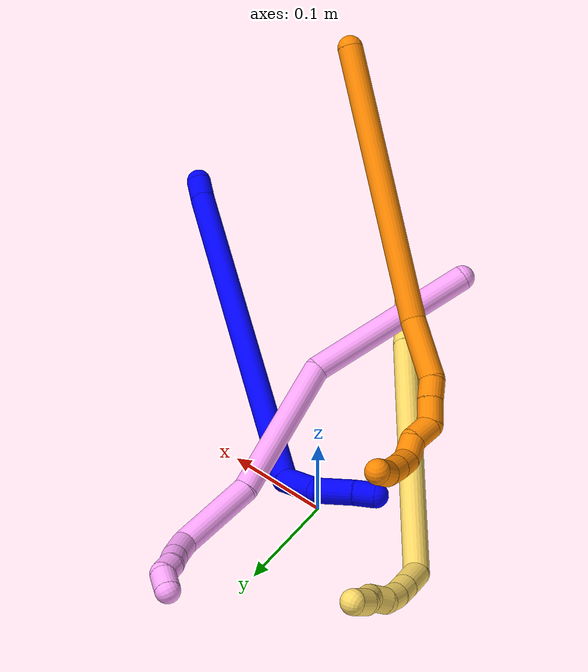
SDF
<sdf version="1.7">
 <world name="default">
  <model name="1">
   <static>0</static>
   <link name="1">
    <collision name="collision-cylinder-e_1_1_4">
     <pose>-0.001425 -0.001514 -0.011313 3.00856 -0.124166 -1.50168</pose>
     <geometry><cylinder><radius>0.0125</radius><length>0.023006</length></cylinder></geometry>
     <surface>
      <friction><ode><mu>1.16</mu><mu2>1.16</mu2><slip1>0</slip1><slip2>0</slip2></ode></friction>
      <contact><ode><kp>1e+06</kp><kd>1</kd><max_vel>0</max_vel><min_depth>0.001</min_depth></ode></contact>
     </surface>
    </collision>
    <visual name="visual-cylinder-e_1_1_4">
     <pose>-0.001425 -0.001514 -0.011313 3.00856 -0.124166 -1.50168</pose>
     <geometry><cylinder><radius>0.0125</radius><length>0.023006</length></cylinder></geometry>
     <material><ambient>0 0 1 1</ambient></material>
    </visual>
    <collision name="collision-cylinder-e_2_4_5">
     <pose>-0.009298 -0.001865 -0.210254 -3.13539 -0.034357 2.78465</pose>
     <geometry><cylinder><radius>0.0125</radius><length>0.375483</length></cylinder></geometry>
     <surface>
      <friction><ode><mu>1.16</mu><mu2>1.16</mu2><slip1>0</slip1><slip2>0</slip2></ode></friction>
      <contact><ode><kp>1e+06</kp><kd>1</kd><max_vel>0</max_vel><min_depth>0.001</min_depth></ode></contact>
     </surface>
    </collision>
    <visual name="visual-cylinder-e_2_4_5">
     <pose>-0.009298 -0.001865 -0.210254 -3.13539 -0.034357 2.78465</pose>
     <geometry><cylinder><radius>0.0125</radius><length>0.375483</length></cylinder></geometry>
     <material><ambient>0 0 1 1</ambient></material>
    </visual>
    <collision name="collision-cylinder-e_3_5_6">
     <pose>-0.018763 0.013321 -0.413426 -2.40759 -0.143066 0.368571</pose>
     <geometry><cylinder><radius>0.0125</radius><length>0.042302</length></cylinder></geometry>
     <surface>
      <friction><ode><mu>1.16</mu><mu2>1.16</mu2><slip1>0</slip1><slip2>0</slip2></ode></friction>
      <contact><ode><kp>1e+06</kp><kd>1</kd><max_vel>0</max_vel><min_depth>0.001</min_depth></ode></contact>
     </surface>
    </collision>
    <visual name="visual-cylinder-e_3_5_6">
     <pose>-0.018763 0.013321 -0.413426 -2.40759 -0.143066 0.368571</pose>
     <geometry><cylinder><radius>0.0125</radius><length>0.042302</length></cylinder></geometry>
     <material><ambient>0 0 1 1</ambient></material>
    </visual>
    <collision name="collision-cylinder-e_4_6_7">
     <pose>-0.032539 0.04123 -0.435996 -2.03921 -0.604984 0.939484</pose>
     <geometry><cylinder><radius>0.0125</radius><length>0.03784</length></cylinder></geometry>
     <surface>
      <friction><ode><mu>1.16</mu><mu2>1.16</mu2><slip1>0</slip1><slip2>0</slip2></ode></friction>
      <contact><ode><kp>1e+06</kp><kd>1</kd><max_vel>0</max_vel><min_depth>0.001</min_depth></ode></contact>
     </surface>
    </collision>
    <visual name="visual-cylinder-e_4_6_7">
     <pose>-0.032539 0.04123 -0.435996 -2.03921 -0.604984 0.939484</pose>
     <geometry><cylinder><radius>0.0125</radius><length>0.03784</length></cylinder></geometry>
     <material><ambient>0 0 1 1</ambient></material>
    </visual>
    <collision name="collision-cylinder-e_5_7_2">
     <pose>-0.049982 0.062341 -0.447182 -2.09327 -0.675628 1.09204</pose>
     <geometry><cylinder><radius>0.0125</radius><length>0.021369</length></cylinder></geometry>
     <surface>
      <friction><ode><mu>1.16</mu><mu2>1.16</mu2><slip1>0</slip1><slip2>0</slip2></ode></friction>
      <contact><ode><kp>1e+06</kp><kd>1</kd><max_vel>0</max_vel><min_depth>0.001</min_depth></ode></contact>
     </surface>
    </collision>
    <visual name="visual-cylinder-e_5_7_2">
     <pose>-0.049982 0.062341 -0.447182 -2.09327 -0.675628 1.09204</pose>
     <geometry><cylinder><radius>0.0125</radius><length>0.021369</length></cylinder></geometry>
     <material><ambient>0 0 1 1</ambient></material>
    </visual>
    <collision name="collision-sphere-2">
     <pose>-0.056664 0.069566 -0.451342 0 -0 0</pose>
     <geometry><sphere><radius>0.0125</radius></sphere></geometry>
     <surface>
      <friction><ode><mu>1.16</mu><mu2>1.16</mu2><slip1>0</slip1><slip2>0</slip2></ode></friction>
      <contact><ode><kp>1e+06</kp><kd>1</kd><max_vel>0</max_vel><min_depth>0.001</min_depth></ode></contact>
     </surface>
    </collision>
    <visual name="visual-sphere-2">
     <pose>-0.056664 0.069566 -0.451342 0 -0 0</pose>
     <geometry><sphere><radius>0.0125</radius></sphere></geometry>
     <material><ambient>0 0 1 1</ambient></material>
    </visual>
    <collision name="collision-sphere-7">
     <pose>-0.0433 0.055116 -0.443022 0 -0 0</pose>
     <geometry><sphere><radius>0.0125</radius></sphere></geometry>
     <surface>
      <friction><ode><mu>1.16</mu><mu2>1.16</mu2><slip1>0</slip1><slip2>0</slip2></ode></friction>
      <contact><ode><kp>1e+06</kp><kd>1</kd><max_vel>0</max_vel><min_depth>0.001</min_depth></ode></contact>
     </surface>
    </collision>
    <visual name="visual-sphere-7">
     <pose>-0.0433 0.055116 -0.443022 0 -0 0</pose>
     <geometry><sphere><radius>0.0125</radius></sphere></geometry>
     <material><ambient>0 0 1 1</ambient></material>
    </visual>
    <collision name="collision-sphere-6">
     <pose>-0.021778 0.027344 -0.42897 0 -0 0</pose>
     <geometry><sphere><radius>0.0125</radius></sphere></geometry>
     <surface>
      <friction><ode><mu>1.16</mu><mu2>1.16</mu2><slip1>0</slip1><slip2>0</slip2></ode></friction>
      <contact><ode><kp>1e+06</kp><kd>1</kd><max_vel>0</max_vel><min_depth>0.001</min_depth></ode></contact>
     </surface>
    </collision>
    <visual name="visual-sphere-6">
     <pose>-0.021778 0.027344 -0.42897 0 -0 0</pose>
     <geometry><sphere><radius>0.0125</radius></sphere></geometry>
     <material><ambient>0 0 1 1</ambient></material>
    </visual>
    <collision name="collision-sphere-5">
     <pose>-0.015747 -0.000702 -0.397881 0 -0 0</pose>
     <geometry><sphere><radius>0.0125</radius></sphere></geometry>
     <surface>
      <friction><ode><mu>1.16</mu><mu2>1.16</mu2><slip1>0</slip1><slip2>0</slip2></ode></friction>
      <contact><ode><kp>1e+06</kp><kd>1</kd><max_vel>0</max_vel><min_depth>0.001</min_depth></ode></contact>
     </surface>
    </collision>
    <visual name="visual-sphere-5">
     <pose>-0.015747 -0.000702 -0.397881 0 -0 0</pose>
     <geometry><sphere><radius>0.0125</radius></sphere></geometry>
     <material><ambient>0 0 1 1</ambient></material>
    </visual>
    <collision name="collision-sphere-1">
     <geometry><sphere><radius>0.0125</radius></sphere></geometry>
     <surface>
      <friction><ode><mu>1.16</mu><mu2>1.16</mu2><slip1>0</slip1><slip2>0</slip2></ode></friction>
      <contact><ode><kp>1e+06</kp><kd>1</kd><max_vel>0</max_vel><min_depth>0.001</min_depth></ode></contact>
     </surface>
    </collision>
    <visual name="visual-sphere-1">
     <geometry><sphere><radius>0.0125</radius></sphere></geometry>
     <material><ambient>0 0 1 1</ambient></material>
    </visual>
    <collision name="collision-sphere-4">
     <pose>-0.002849 -0.003028 -0.022627 0 -0 0</pose>
     <geometry><sphere><radius>0.0125</radius></sphere></geometry>
     <surface>
      <friction><ode><mu>1.16</mu><mu2>1.16</mu2><slip1>0</slip1><slip2>0</slip2></ode></friction>
      <contact><ode><kp>1e+06</kp><kd>1</kd><max_vel>0</max_vel><min_depth>0.001</min_depth></ode></contact>
     </surface>
    </collision>
    <visual name="visual-sphere-4">
     <pose>-0.002849 -0.003028 -0.022627 0 -0 0</pose>
     <geometry><sphere><radius>0.0125</radius></sphere></geometry>
     <material><ambient>0 0 1 1</ambient></material>
    </visual>
    <inertial>
     <pose>-0.013234 0.005441 -0.2455 0 -0 0</pose>
     <mass>0.5</mass>
     <inertia>
      <ixx>-0.002587</ixx>
      <ixy>0</ixy>
      <ixz>0</ixz>
      <iyy>0.005701</iyy>
      <iyz>0</iyz>
      <izz>8.5e-05</izz>
     </inertia>
    </inertial>
   </link>
   <pose>0.351319 -0.251631 0.015222 1.5972 -0.76327 0.845753</pose>
  </model>
  <model name="4">
   <static>0</static>
   <link name="4">
    <collision name="collision-cylinder-e_1_1_4">
     <pose>0.002328 0.014761 -0.086279 -2.97214 0.026591 -0.310592</pose>
     <geometry><cylinder><radius>0.0125</radius><length>0.175126</length></cylinder></geometry>
     <surface>
      <friction><ode><mu>1.16</mu><mu2>1.16</mu2><slip1>0</slip1><slip2>0</slip2></ode></friction>
      <contact><ode><kp>1e+06</kp><kd>1</kd><max_vel>0</max_vel><min_depth>0.001</min_depth></ode></contact>
     </surface>
    </collision>
    <visual name="visual-cylinder-e_1_1_4">
     <pose>0.002328 0.014761 -0.086279 -2.97214 0.026591 -0.310592</pose>
     <geometry><cylinder><radius>0.0125</radius><length>0.175126</length></cylinder></geometry>
     <material><ambient>1 0.65098 0.996078 1</ambient></material>
    </visual>
    <collision name="collision-cylinder-e_2_4_5">
     <pose>-0.001881 0.074327 -0.230804 -2.48591 -0.088719 0.259553</pose>
     <geometry><cylinder><radius>0.0125</radius><length>0.147551</length></cylinder></geometry>
     <surface>
      <friction><ode><mu>1.16</mu><mu2>1.16</mu2><slip1>0</slip1><slip2>0</slip2></ode></friction>
      <contact><ode><kp>1e+06</kp><kd>1</kd><max_vel>0</max_vel><min_depth>0.001</min_depth></ode></contact>
     </surface>
    </collision>
    <visual name="visual-cylinder-e_2_4_5">
     <pose>-0.001881 0.074327 -0.230804 -2.48591 -0.088719 0.259553</pose>
     <geometry><cylinder><radius>0.0125</radius><length>0.147551</length></cylinder></geometry>
     <material><ambient>1 0.65098 0.996078 1</ambient></material>
    </visual>
    <collision name="collision-cylinder-e_3_5_6">
     <pose>-0.00575 0.135383 -0.327074 -2.7377 0.064416 -0.312173</pose>
     <geometry><cylinder><radius>0.0125</radius><length>0.082873</length></cylinder></geometry>
     <surface>
      <friction><ode><mu>1.16</mu><mu2>1.16</mu2><slip1>0</slip1><slip2>0</slip2></ode></friction>
      <contact><ode><kp>1e+06</kp><kd>1</kd><max_vel>0</max_vel><min_depth>0.001</min_depth></ode></contact>
     </surface>
    </collision>
    <visual name="visual-cylinder-e_3_5_6">
     <pose>-0.00575 0.135383 -0.327074 -2.7377 0.064416 -0.312173</pose>
     <geometry><cylinder><radius>0.0125</radius><length>0.082873</length></cylinder></geometry>
     <material><ambient>1 0.65098 0.996078 1</ambient></material>
    </visual>
    <collision name="collision-cylinder-e_4_6_7">
     <pose>0.004795 0.163779 -0.372148 -2.09673 0.511205 -0.852085</pose>
     <geometry><cylinder><radius>0.0125</radius><length>0.032203</length></cylinder></geometry>
     <surface>
      <friction><ode><mu>1.16</mu><mu2>1.16</mu2><slip1>0</slip1><slip2>0</slip2></ode></friction>
      <contact><ode><kp>1e+06</kp><kd>1</kd><max_vel>0</max_vel><min_depth>0.001</min_depth></ode></contact>
     </surface>
    </collision>
    <visual name="visual-cylinder-e_4_6_7">
     <pose>0.004795 0.163779 -0.372148 -2.09673 0.511205 -0.852085</pose>
     <geometry><cylinder><radius>0.0125</radius><length>0.032203</length></cylinder></geometry>
     <material><ambient>1 0.65098 0.996078 1</ambient></material>
    </visual>
    <collision name="collision-cylinder-e_5_7_8">
     <pose>0.017986 0.184514 -0.382475 -1.93534 0.524068 -0.742689</pose>
     <geometry><cylinder><radius>0.0125</radius><length>0.021239</length></cylinder></geometry>
     <surface>
      <friction><ode><mu>1.16</mu><mu2>1.16</mu2><slip1>0</slip1><slip2>0</slip2></ode></friction>
      <contact><ode><kp>1e+06</kp><kd>1</kd><max_vel>0</max_vel><min_depth>0.001</min_depth></ode></contact>
     </surface>
    </collision>
    <visual name="visual-cylinder-e_5_7_8">
     <pose>0.017986 0.184514 -0.382475 -1.93534 0.524068 -0.742689</pose>
     <geometry><cylinder><radius>0.0125</radius><length>0.021239</length></cylinder></geometry>
     <material><ambient>1 0.65098 0.996078 1</ambient></material>
    </visual>
    <collision name="collision-cylinder-e_6_8_9">
     <pose>0.028041 0.200166 -0.391124 -2.22096 0.49073 -0.935307</pose>
     <geometry><cylinder><radius>0.0125</radius><length>0.020119</length></cylinder></geometry>
     <surface>
      <friction><ode><mu>1.16</mu><mu2>1.16</mu2><slip1>0</slip1><slip2>0</slip2></ode></friction>
      <contact><ode><kp>1e+06</kp><kd>1</kd><max_vel>0</max_vel><min_depth>0.001</min_depth></ode></contact>
     </surface>
    </collision>
    <visual name="visual-cylinder-e_6_8_9">
     <pose>0.028041 0.200166 -0.391124 -2.22096 0.49073 -0.935307</pose>
     <geometry><cylinder><radius>0.0125</radius><length>0.020119</length></cylinder></geometry>
     <material><ambient>1 0.65098 0.996078 1</ambient></material>
    </visual>
    <collision name="collision-cylinder-e_7_9_2">
     <pose>0.032471 0.217575 -0.397882 -1.7041 -0.029709 0.033958</pose>
     <geometry><cylinder><radius>0.0125</radius><length>0.020888</length></cylinder></geometry>
     <surface>
      <friction><ode><mu>1.16</mu><mu2>1.16</mu2><slip1>0</slip1><slip2>0</slip2></ode></friction>
      <contact><ode><kp>1e+06</kp><kd>1</kd><max_vel>0</max_vel><min_depth>0.001</min_depth></ode></contact>
     </surface>
    </collision>
    <visual name="visual-cylinder-e_7_9_2">
     <pose>0.032471 0.217575 -0.397882 -1.7041 -0.029709 0.033958</pose>
     <geometry><cylinder><radius>0.0125</radius><length>0.020888</length></cylinder></geometry>
     <material><ambient>1 0.65098 0.996078 1</ambient></material>
    </visual>
    <collision name="collision-sphere-2">
     <pose>0.032161 0.227922 -0.39927 0 -0 0</pose>
     <geometry><sphere><radius>0.0125</radius></sphere></geometry>
     <surface>
      <friction><ode><mu>1.16</mu><mu2>1.16</mu2><slip1>0</slip1><slip2>0</slip2></ode></friction>
      <contact><ode><kp>1e+06</kp><kd>1</kd><max_vel>0</max_vel><min_depth>0.001</min_depth></ode></contact>
     </surface>
    </collision>
    <visual name="visual-sphere-2">
     <pose>0.032161 0.227922 -0.39927 0 -0 0</pose>
     <geometry><sphere><radius>0.0125</radius></sphere></geometry>
     <material><ambient>1 0.65098 0.996078 1</ambient></material>
    </visual>
    <collision name="collision-sphere-9">
     <pose>0.032782 0.207229 -0.396495 0 -0 0</pose>
     <geometry><sphere><radius>0.0125</radius></sphere></geometry>
     <surface>
      <friction><ode><mu>1.16</mu><mu2>1.16</mu2><slip1>0</slip1><slip2>0</slip2></ode></friction>
      <contact><ode><kp>1e+06</kp><kd>1</kd><max_vel>0</max_vel><min_depth>0.001</min_depth></ode></contact>
     </surface>
    </collision>
    <visual name="visual-sphere-9">
     <pose>0.032782 0.207229 -0.396495 0 -0 0</pose>
     <geometry><sphere><radius>0.0125</radius></sphere></geometry>
     <material><ambient>1 0.65098 0.996078 1</ambient></material>
    </visual>
    <collision name="collision-sphere-4">
     <pose>0.004656 0.029523 -0.172557 0 -0 0</pose>
     <geometry><sphere><radius>0.0125</radius></sphere></geometry>
     <surface>
      <friction><ode><mu>1.16</mu><mu2>1.16</mu2><slip1>0</slip1><slip2>0</slip2></ode></friction>
      <contact><ode><kp>1e+06</kp><kd>1</kd><max_vel>0</max_vel><min_depth>0.001</min_depth></ode></contact>
     </surface>
    </collision>
    <visual name="visual-sphere-4">
     <pose>0.004656 0.029523 -0.172557 0 -0 0</pose>
     <geometry><sphere><radius>0.0125</radius></sphere></geometry>
     <material><ambient>1 0.65098 0.996078 1</ambient></material>
    </visual>
    <collision name="collision-sphere-1">
     <geometry><sphere><radius>0.0125</radius></sphere></geometry>
     <surface>
      <friction><ode><mu>1.16</mu><mu2>1.16</mu2><slip1>0</slip1><slip2>0</slip2></ode></friction>
      <contact><ode><kp>1e+06</kp><kd>1</kd><max_vel>0</max_vel><min_depth>0.001</min_depth></ode></contact>
     </surface>
    </collision>
    <visual name="visual-sphere-1">
     <geometry><sphere><radius>0.0125</radius></sphere></geometry>
     <material><ambient>1 0.65098 0.996078 1</ambient></material>
    </visual>
    <collision name="collision-sphere-8">
     <pose>0.0233 0.193104 -0.385753 0 -0 0</pose>
     <geometry><sphere><radius>0.0125</radius></sphere></geometry>
     <surface>
      <friction><ode><mu>1.16</mu><mu2>1.16</mu2><slip1>0</slip1><slip2>0</slip2></ode></friction>
      <contact><ode><kp>1e+06</kp><kd>1</kd><max_vel>0</max_vel><min_depth>0.001</min_depth></ode></contact>
     </surface>
    </collision>
    <visual name="visual-sphere-8">
     <pose>0.0233 0.193104 -0.385753 0 -0 0</pose>
     <geometry><sphere><radius>0.0125</radius></sphere></geometry>
     <material><ambient>1 0.65098 0.996078 1</ambient></material>
    </visual>
    <collision name="collision-sphere-5">
     <pose>-0.008417 0.119132 -0.289051 0 -0 0</pose>
     <geometry><sphere><radius>0.0125</radius></sphere></geometry>
     <surface>
      <friction><ode><mu>1.16</mu><mu2>1.16</mu2><slip1>0</slip1><slip2>0</slip2></ode></friction>
      <contact><ode><kp>1e+06</kp><kd>1</kd><max_vel>0</max_vel><min_depth>0.001</min_depth></ode></contact>
     </surface>
    </collision>
    <visual name="visual-sphere-5">
     <pose>-0.008417 0.119132 -0.289051 0 -0 0</pose>
     <geometry><sphere><radius>0.0125</radius></sphere></geometry>
     <material><ambient>1 0.65098 0.996078 1</ambient></material>
    </visual>
    <collision name="collision-sphere-6">
     <pose>-0.003083 0.151633 -0.365098 0 -0 0</pose>
     <geometry><sphere><radius>0.0125</radius></sphere></geometry>
     <surface>
      <friction><ode><mu>1.16</mu><mu2>1.16</mu2><slip1>0</slip1><slip2>0</slip2></ode></friction>
      <contact><ode><kp>1e+06</kp><kd>1</kd><max_vel>0</max_vel><min_depth>0.001</min_depth></ode></contact>
     </surface>
    </collision>
    <visual name="visual-sphere-6">
     <pose>-0.003083 0.151633 -0.365098 0 -0 0</pose>
     <geometry><sphere><radius>0.0125</radius></sphere></geometry>
     <material><ambient>1 0.65098 0.996078 1</ambient></material>
    </visual>
    <collision name="collision-sphere-7">
     <pose>0.012672 0.175924 -0.379197 0 -0 0</pose>
     <geometry><sphere><radius>0.0125</radius></sphere></geometry>
     <surface>
      <friction><ode><mu>1.16</mu><mu2>1.16</mu2><slip1>0</slip1><slip2>0</slip2></ode></friction>
      <contact><ode><kp>1e+06</kp><kd>1</kd><max_vel>0</max_vel><min_depth>0.001</min_depth></ode></contact>
     </surface>
    </collision>
    <visual name="visual-sphere-7">
     <pose>0.012672 0.175924 -0.379197 0 -0 0</pose>
     <geometry><sphere><radius>0.0125</radius></sphere></geometry>
     <material><ambient>1 0.65098 0.996078 1</ambient></material>
    </visual>
    <inertial>
     <pose>0.002865 0.085073 -0.225117 0 -0 0</pose>
     <mass>0.5</mass>
     <inertia>
      <ixx>0.000663</ixx>
      <ixy>0</ixy>
      <ixz>0</ixz>
      <iyy>-0.000747</iyy>
      <iyz>0</iyz>
      <izz>-0.000295</izz>
     </inertia>
    </inertial>
   </link>
   <pose>0.025362 -0.267893 0.078004 0.619891 -1.29958 0.430636</pose>
  </model>
  <model name="5">
   <static>0</static>
   <link name="5">
    <collision name="collision-cylinder-e_1_1_4">
     <pose>-0.015588 0.021847 0.01836 -0.871904 -0.499957 0.236766</pose>
     <geometry><cylinder><radius>0.0125</radius><length>0.065035</length></cylinder></geometry>
     <surface>
      <friction><ode><mu>1.16</mu><mu2>1.16</mu2><slip1>0</slip1><slip2>0</slip2></ode></friction>
      <contact><ode><kp>1e+06</kp><kd>1</kd><max_vel>0</max_vel><min_depth>0.001</min_depth></ode></contact>
     </surface>
    </collision>
    <visual name="visual-cylinder-e_1_1_4">
     <pose>-0.015588 0.021847 0.01836 -0.871904 -0.499957 0.236766</pose>
     <geometry><cylinder><radius>0.0125</radius><length>0.065035</length></cylinder></geometry>
     <material><ambient>1 0.858824 0.4 1</ambient></material>
    </visual>
    <collision name="collision-cylinder-e_2_4_5">
     <pose>-0.091307 0.144957 0.130891 -0.821673 -0.410167 0.180734</pose>
     <geometry><cylinder><radius>0.0125</radius><length>0.301582</length></cylinder></geometry>
     <surface>
      <friction><ode><mu>1.16</mu><mu2>1.16</mu2><slip1>0</slip1><slip2>0</slip2></ode></friction>
      <contact><ode><kp>1e+06</kp><kd>1</kd><max_vel>0</max_vel><min_depth>0.001</min_depth></ode></contact>
     </surface>
    </collision>
    <visual name="visual-cylinder-e_2_4_5">
     <pose>-0.091307 0.144957 0.130891 -0.821673 -0.410167 0.180734</pose>
     <geometry><cylinder><radius>0.0125</radius><length>0.301582</length></cylinder></geometry>
     <material><ambient>1 0.858824 0.4 1</ambient></material>
    </visual>
    <collision name="collision-cylinder-e_3_5_6">
     <pose>-0.152225 0.261383 0.229575 -1.28146 -0.049789 0.03713</pose>
     <geometry><cylinder><radius>0.0125</radius><length>0.03168</length></cylinder></geometry>
     <surface>
      <friction><ode><mu>1.16</mu><mu2>1.16</mu2><slip1>0</slip1><slip2>0</slip2></ode></friction>
      <contact><ode><kp>1e+06</kp><kd>1</kd><max_vel>0</max_vel><min_depth>0.001</min_depth></ode></contact>
     </surface>
    </collision>
    <visual name="visual-cylinder-e_3_5_6">
     <pose>-0.152225 0.261383 0.229575 -1.28146 -0.049789 0.03713</pose>
     <geometry><cylinder><radius>0.0125</radius><length>0.03168</length></cylinder></geometry>
     <material><ambient>1 0.858824 0.4 1</ambient></material>
    </visual>
    <collision name="collision-cylinder-e_4_6_7">
     <pose>-0.153354 0.286615 0.236827 -1.30532 -0.032668 0.024972</pose>
     <geometry><cylinder><radius>0.0125</radius><length>0.020881</length></cylinder></geometry>
     <surface>
      <friction><ode><mu>1.16</mu><mu2>1.16</mu2><slip1>0</slip1><slip2>0</slip2></ode></friction>
      <contact><ode><kp>1e+06</kp><kd>1</kd><max_vel>0</max_vel><min_depth>0.001</min_depth></ode></contact>
     </surface>
    </collision>
    <visual name="visual-cylinder-e_4_6_7">
     <pose>-0.153354 0.286615 0.236827 -1.30532 -0.032668 0.024972</pose>
     <geometry><cylinder><radius>0.0125</radius><length>0.020881</length></cylinder></geometry>
     <material><ambient>1 0.858824 0.4 1</ambient></material>
    </visual>
    <collision name="collision-cylinder-e_5_7_8">
     <pose>-0.152867 0.30691 0.24121 -1.41122 0.079754 -0.067955</pose>
     <geometry><cylinder><radius>0.0125</radius><length>0.02078</length></cylinder></geometry>
     <surface>
      <friction><ode><mu>1.16</mu><mu2>1.16</mu2><slip1>0</slip1><slip2>0</slip2></ode></friction>
      <contact><ode><kp>1e+06</kp><kd>1</kd><max_vel>0</max_vel><min_depth>0.001</min_depth></ode></contact>
     </surface>
    </collision>
    <visual name="visual-cylinder-e_5_7_8">
     <pose>-0.152867 0.30691 0.24121 -1.41122 0.079754 -0.067955</pose>
     <geometry><cylinder><radius>0.0125</radius><length>0.02078</length></cylinder></geometry>
     <material><ambient>1 0.858824 0.4 1</ambient></material>
    </visual>
    <collision name="collision-cylinder-e_6_8_9">
     <pose>-0.148887 0.326205 0.240036 -1.87228 0.320444 -0.432134</pose>
     <geometry><cylinder><radius>0.0125</radius><length>0.020016</length></cylinder></geometry>
     <surface>
      <friction><ode><mu>1.16</mu><mu2>1.16</mu2><slip1>0</slip1><slip2>0</slip2></ode></friction>
      <contact><ode><kp>1e+06</kp><kd>1</kd><max_vel>0</max_vel><min_depth>0.001</min_depth></ode></contact>
     </surface>
    </collision>
    <visual name="visual-cylinder-e_6_8_9">
     <pose>-0.148887 0.326205 0.240036 -1.87228 0.320444 -0.432134</pose>
     <geometry><cylinder><radius>0.0125</radius><length>0.020016</length></cylinder></geometry>
     <material><ambient>1 0.858824 0.4 1</ambient></material>
    </visual>
    <collision name="collision-cylinder-e_7_9_10">
     <pose>-0.143783 0.344033 0.241651 -1.10197 0.196265 -0.120838</pose>
     <geometry><cylinder><radius>0.0125</radius><length>0.020018</length></cylinder></geometry>
     <surface>
      <friction><ode><mu>1.16</mu><mu2>1.16</mu2><slip1>0</slip1><slip2>0</slip2></ode></friction>
      <contact><ode><kp>1e+06</kp><kd>1</kd><max_vel>0</max_vel><min_depth>0.001</min_depth></ode></contact>
     </surface>
    </collision>
    <visual name="visual-cylinder-e_7_9_10">
     <pose>-0.143783 0.344033 0.241651 -1.10197 0.196265 -0.120838</pose>
     <geometry><cylinder><radius>0.0125</radius><length>0.020018</length></cylinder></geometry>
     <material><ambient>1 0.858824 0.4 1</ambient></material>
    </visual>
    <collision name="collision-cylinder-e_8_10_2">
     <pose>-0.139124 0.362411 0.245638 -1.61742 0.274028 -0.286936</pose>
     <geometry><cylinder><radius>0.0125</radius><length>0.020008</length></cylinder></geometry>
     <surface>
      <friction><ode><mu>1.16</mu><mu2>1.16</mu2><slip1>0</slip1><slip2>0</slip2></ode></friction>
      <contact><ode><kp>1e+06</kp><kd>1</kd><max_vel>0</max_vel><min_depth>0.001</min_depth></ode></contact>
     </surface>
    </collision>
    <visual name="visual-cylinder-e_8_10_2">
     <pose>-0.139124 0.362411 0.245638 -1.61742 0.274028 -0.286936</pose>
     <geometry><cylinder><radius>0.0125</radius><length>0.020008</length></cylinder></geometry>
     <material><ambient>1 0.858824 0.4 1</ambient></material>
    </visual>
    <collision name="collision-sphere-2">
     <pose>-0.136417 0.372031 0.245189 0 -0 0</pose>
     <geometry><sphere><radius>0.0125</radius></sphere></geometry>
     <surface>
      <friction><ode><mu>1.16</mu><mu2>1.16</mu2><slip1>0</slip1><slip2>0</slip2></ode></friction>
      <contact><ode><kp>1e+06</kp><kd>1</kd><max_vel>0</max_vel><min_depth>0.001</min_depth></ode></contact>
     </surface>
    </collision>
    <visual name="visual-sphere-2">
     <pose>-0.136417 0.372031 0.245189 0 -0 0</pose>
     <geometry><sphere><radius>0.0125</radius></sphere></geometry>
     <material><ambient>1 0.858824 0.4 1</ambient></material>
    </visual>
    <collision name="collision-sphere-10">
     <pose>-0.141831 0.352791 0.246087 0 -0 0</pose>
     <geometry><sphere><radius>0.0125</radius></sphere></geometry>
     <surface>
      <friction><ode><mu>1.16</mu><mu2>1.16</mu2><slip1>0</slip1><slip2>0</slip2></ode></friction>
      <contact><ode><kp>1e+06</kp><kd>1</kd><max_vel>0</max_vel><min_depth>0.001</min_depth></ode></contact>
     </surface>
    </collision>
    <visual name="visual-sphere-10">
     <pose>-0.141831 0.352791 0.246087 0 -0 0</pose>
     <geometry><sphere><radius>0.0125</radius></sphere></geometry>
     <material><ambient>1 0.858824 0.4 1</ambient></material>
    </visual>
    <collision name="collision-sphere-9">
     <pose>-0.145735 0.335275 0.237215 0 -0 0</pose>
     <geometry><sphere><radius>0.0125</radius></sphere></geometry>
     <surface>
      <friction><ode><mu>1.16</mu><mu2>1.16</mu2><slip1>0</slip1><slip2>0</slip2></ode></friction>
      <contact><ode><kp>1e+06</kp><kd>1</kd><max_vel>0</max_vel><min_depth>0.001</min_depth></ode></contact>
     </surface>
    </collision>
    <visual name="visual-sphere-9">
     <pose>-0.145735 0.335275 0.237215 0 -0 0</pose>
     <geometry><sphere><radius>0.0125</radius></sphere></geometry>
     <material><ambient>1 0.858824 0.4 1</ambient></material>
    </visual>
    <collision name="collision-sphere-4">
     <pose>-0.031177 0.043694 0.03672 0 -0 0</pose>
     <geometry><sphere><radius>0.0125</radius></sphere></geometry>
     <surface>
      <friction><ode><mu>1.16</mu><mu2>1.16</mu2><slip1>0</slip1><slip2>0</slip2></ode></friction>
      <contact><ode><kp>1e+06</kp><kd>1</kd><max_vel>0</max_vel><min_depth>0.001</min_depth></ode></contact>
     </surface>
    </collision>
    <visual name="visual-sphere-4">
     <pose>-0.031177 0.043694 0.03672 0 -0 0</pose>
     <geometry><sphere><radius>0.0125</radius></sphere></geometry>
     <material><ambient>1 0.858824 0.4 1</ambient></material>
    </visual>
    <collision name="collision-sphere-1">
     <geometry><sphere><radius>0.0125</radius></sphere></geometry>
     <surface>
      <friction><ode><mu>1.16</mu><mu2>1.16</mu2><slip1>0</slip1><slip2>0</slip2></ode></friction>
      <contact><ode><kp>1e+06</kp><kd>1</kd><max_vel>0</max_vel><min_depth>0.001</min_depth></ode></contact>
     </surface>
    </collision>
    <visual name="visual-sphere-1">
     <geometry><sphere><radius>0.0125</radius></sphere></geometry>
     <material><ambient>1 0.858824 0.4 1</ambient></material>
    </visual>
    <collision name="collision-sphere-8">
     <pose>-0.15204 0.317135 0.242856 0 -0 0</pose>
     <geometry><sphere><radius>0.0125</radius></sphere></geometry>
     <surface>
      <friction><ode><mu>1.16</mu><mu2>1.16</mu2><slip1>0</slip1><slip2>0</slip2></ode></friction>
      <contact><ode><kp>1e+06</kp><kd>1</kd><max_vel>0</max_vel><min_depth>0.001</min_depth></ode></contact>
     </surface>
    </collision>
    <visual name="visual-sphere-8">
     <pose>-0.15204 0.317135 0.242856 0 -0 0</pose>
     <geometry><sphere><radius>0.0125</radius></sphere></geometry>
     <material><ambient>1 0.858824 0.4 1</ambient></material>
    </visual>
    <collision name="collision-sphere-5">
     <pose>-0.151437 0.24622 0.225061 0 -0 0</pose>
     <geometry><sphere><radius>0.0125</radius></sphere></geometry>
     <surface>
      <friction><ode><mu>1.16</mu><mu2>1.16</mu2><slip1>0</slip1><slip2>0</slip2></ode></friction>
      <contact><ode><kp>1e+06</kp><kd>1</kd><max_vel>0</max_vel><min_depth>0.001</min_depth></ode></contact>
     </surface>
    </collision>
    <visual name="visual-sphere-5">
     <pose>-0.151437 0.24622 0.225061 0 -0 0</pose>
     <geometry><sphere><radius>0.0125</radius></sphere></geometry>
     <material><ambient>1 0.858824 0.4 1</ambient></material>
    </visual>
    <collision name="collision-sphere-6">
     <pose>-0.153013 0.276546 0.234089 0 -0 0</pose>
     <geometry><sphere><radius>0.0125</radius></sphere></geometry>
     <surface>
      <friction><ode><mu>1.16</mu><mu2>1.16</mu2><slip1>0</slip1><slip2>0</slip2></ode></friction>
      <contact><ode><kp>1e+06</kp><kd>1</kd><max_vel>0</max_vel><min_depth>0.001</min_depth></ode></contact>
     </surface>
    </collision>
    <visual name="visual-sphere-6">
     <pose>-0.153013 0.276546 0.234089 0 -0 0</pose>
     <geometry><sphere><radius>0.0125</radius></sphere></geometry>
     <material><ambient>1 0.858824 0.4 1</ambient></material>
    </visual>
    <collision name="collision-sphere-7">
     <pose>-0.153695 0.296685 0.239565 0 -0 0</pose>
     <geometry><sphere><radius>0.0125</radius></sphere></geometry>
     <surface>
      <friction><ode><mu>1.16</mu><mu2>1.16</mu2><slip1>0</slip1><slip2>0</slip2></ode></friction>
      <contact><ode><kp>1e+06</kp><kd>1</kd><max_vel>0</max_vel><min_depth>0.001</min_depth></ode></contact>
     </surface>
    </collision>
    <visual name="visual-sphere-7">
     <pose>-0.153695 0.296685 0.239565 0 -0 0</pose>
     <geometry><sphere><radius>0.0125</radius></sphere></geometry>
     <material><ambient>1 0.858824 0.4 1</ambient></material>
    </visual>
    <inertial>
     <pose>-0.096787 0.172895 0.144911 0 -0 0</pose>
     <mass>0.5</mass>
     <inertia>
      <ixx>0.002478</ixx>
      <ixy>0</ixy>
      <ixz>0</ixz>
      <iyy>0.002092</iyy>
      <iyz>0</iyz>
      <izz>-0.000624</izz>
     </inertia>
    </inertial>
   </link>
   <pose>0.083998 -0.258349 0.013353 1.12713 -1.03152 -1.18362</pose>
  </model>
  <model name="19">
   <static>0</static>
   <link name="19">
    <collision name="collision-cylinder-e_1_1_4">
     <pose>-0.03173 0.105288 -0.086721 -2.2598 -0.22855 0.477195</pose>
     <geometry><cylinder><radius>0.0125</radius><length>0.280091</length></cylinder></geometry>
     <surface>
      <friction><ode><mu>1.16</mu><mu2>1.16</mu2><slip1>0</slip1><slip2>0</slip2></ode></friction>
      <contact><ode><kp>1e+06</kp><kd>1</kd><max_vel>0</max_vel><min_depth>0.001</min_depth></ode></contact>
     </surface>
    </collision>
    <visual name="visual-cylinder-e_1_1_4">
     <pose>-0.03173 0.105288 -0.086721 -2.2598 -0.22855 0.477195</pose>
     <geometry><cylinder><radius>0.0125</radius><length>0.280091</length></cylinder></geometry>
     <material><ambient>0.996078 0.537255 0 1</ambient></material>
    </visual>
    <collision name="collision-cylinder-e_2_4_5">
     <pose>-0.073456 0.23764 -0.187298 -2.04397 -0.317662 0.512403</pose>
     <geometry><cylinder><radius>0.0125</radius><length>0.064014</length></cylinder></geometry>
     <surface>
      <friction><ode><mu>1.16</mu><mu2>1.16</mu2><slip1>0</slip1><slip2>0</slip2></ode></friction>
      <contact><ode><kp>1e+06</kp><kd>1</kd><max_vel>0</max_vel><min_depth>0.001</min_depth></ode></contact>
     </surface>
    </collision>
    <visual name="visual-cylinder-e_2_4_5">
     <pose>-0.073456 0.23764 -0.187298 -2.04397 -0.317662 0.512403</pose>
     <geometry><cylinder><radius>0.0125</radius><length>0.064014</length></cylinder></geometry>
     <material><ambient>0.996078 0.537255 0 1</ambient></material>
    </visual>
    <collision name="collision-cylinder-e_3_5_6">
     <pose>-0.082876 0.274395 -0.205832 -2.0205 0.053661 -0.085456</pose>
     <geometry><cylinder><radius>0.0125</radius><length>0.02155</length></cylinder></geometry>
     <surface>
      <friction><ode><mu>1.16</mu><mu2>1.16</mu2><slip1>0</slip1><slip2>0</slip2></ode></friction>
      <contact><ode><kp>1e+06</kp><kd>1</kd><max_vel>0</max_vel><min_depth>0.001</min_depth></ode></contact>
     </surface>
    </collision>
    <visual name="visual-cylinder-e_3_5_6">
     <pose>-0.082876 0.274395 -0.205832 -2.0205 0.053661 -0.085456</pose>
     <geometry><cylinder><radius>0.0125</radius><length>0.02155</length></cylinder></geometry>
     <material><ambient>0.996078 0.537255 0 1</ambient></material>
    </visual>
    <collision name="collision-cylinder-e_4_6_7">
     <pose>-0.082635 0.295622 -0.215965 -2.01257 -0.026387 0.041666</pose>
     <geometry><cylinder><radius>0.0125</radius><length>0.025533</length></cylinder></geometry>
     <surface>
      <friction><ode><mu>1.16</mu><mu2>1.16</mu2><slip1>0</slip1><slip2>0</slip2></ode></friction>
      <contact><ode><kp>1e+06</kp><kd>1</kd><max_vel>0</max_vel><min_depth>0.001</min_depth></ode></contact>
     </surface>
    </collision>
    <visual name="visual-cylinder-e_4_6_7">
     <pose>-0.082635 0.295622 -0.215965 -2.01257 -0.026387 0.041666</pose>
     <geometry><cylinder><radius>0.0125</radius><length>0.025533</length></cylinder></geometry>
     <material><ambient>0.996078 0.537255 0 1</ambient></material>
    </visual>
    <collision name="collision-cylinder-e_5_7_8">
     <pose>-0.075602 0.31738 -0.221356 -1.56442 0.624685 -0.620963</pose>
     <geometry><cylinder><radius>0.0125</radius><length>0.025202</length></cylinder></geometry>
     <surface>
      <friction><ode><mu>1.16</mu><mu2>1.16</mu2><slip1>0</slip1><slip2>0</slip2></ode></friction>
      <contact><ode><kp>1e+06</kp><kd>1</kd><max_vel>0</max_vel><min_depth>0.001</min_depth></ode></contact>
     </surface>
    </collision>
    <visual name="visual-cylinder-e_5_7_8">
     <pose>-0.075602 0.31738 -0.221356 -1.56442 0.624685 -0.620963</pose>
     <geometry><cylinder><radius>0.0125</radius><length>0.025202</length></cylinder></geometry>
     <material><ambient>0.996078 0.537255 0 1</ambient></material>
    </visual>
    <collision name="collision-cylinder-e_6_8_9">
     <pose>-0.065844 0.338189 -0.224171 -1.83633 0.214356 -0.279678</pose>
     <geometry><cylinder><radius>0.0125</radius><length>0.022458</length></cylinder></geometry>
     <surface>
      <friction><ode><mu>1.16</mu><mu2>1.16</mu2><slip1>0</slip1><slip2>0</slip2></ode></friction>
      <contact><ode><kp>1e+06</kp><kd>1</kd><max_vel>0</max_vel><min_depth>0.001</min_depth></ode></contact>
     </surface>
    </collision>
    <visual name="visual-cylinder-e_6_8_9">
     <pose>-0.065844 0.338189 -0.224171 -1.83633 0.214356 -0.279678</pose>
     <geometry><cylinder><radius>0.0125</radius><length>0.022458</length></cylinder></geometry>
     <material><ambient>0.996078 0.537255 0 1</ambient></material>
    </visual>
    <collision name="collision-cylinder-e_7_9_10">
     <pose>-0.060194 0.357662 -0.223573 -1.19787 0.329351 -0.225895</pose>
     <geometry><cylinder><radius>0.0125</radius><length>0.020167</length></cylinder></geometry>
     <surface>
      <friction><ode><mu>1.16</mu><mu2>1.16</mu2><slip1>0</slip1><slip2>0</slip2></ode></friction>
      <contact><ode><kp>1e+06</kp><kd>1</kd><max_vel>0</max_vel><min_depth>0.001</min_depth></ode></contact>
     </surface>
    </collision>
    <visual name="visual-cylinder-e_7_9_10">
     <pose>-0.060194 0.357662 -0.223573 -1.19787 0.329351 -0.225895</pose>
     <geometry><cylinder><radius>0.0125</radius><length>0.020167</length></cylinder></geometry>
     <material><ambient>0.996078 0.537255 0 1</ambient></material>
    </visual>
    <collision name="collision-cylinder-e_8_10_11">
     <pose>-0.05341 0.375283 -0.215841 -1.11739 0.34779 -0.218756</pose>
     <geometry><cylinder><radius>0.0125</radius><length>0.020672</length></cylinder></geometry>
     <surface>
      <friction><ode><mu>1.16</mu><mu2>1.16</mu2><slip1>0</slip1><slip2>0</slip2></ode></friction>
      <contact><ode><kp>1e+06</kp><kd>1</kd><max_vel>0</max_vel><min_depth>0.001</min_depth></ode></contact>
     </surface>
    </collision>
    <visual name="visual-cylinder-e_8_10_11">
     <pose>-0.05341 0.375283 -0.215841 -1.11739 0.34779 -0.218756</pose>
     <geometry><cylinder><radius>0.0125</radius><length>0.020672</length></cylinder></geometry>
     <material><ambient>0.996078 0.537255 0 1</ambient></material>
    </visual>
    <collision name="collision-cylinder-e_9_11_2">
     <pose>-0.046835 0.390507 -0.204392 -0.734044 0.30522 -0.118121</pose>
     <geometry><cylinder><radius>0.0125</radius><length>0.020312</length></cylinder></geometry>
     <surface>
      <friction><ode><mu>1.16</mu><mu2>1.16</mu2><slip1>0</slip1><slip2>0</slip2></ode></friction>
      <contact><ode><kp>1e+06</kp><kd>1</kd><max_vel>0</max_vel><min_depth>0.001</min_depth></ode></contact>
     </surface>
    </collision>
    <visual name="visual-cylinder-e_9_11_2">
     <pose>-0.046835 0.390507 -0.204392 -0.734044 0.30522 -0.118121</pose>
     <geometry><cylinder><radius>0.0125</radius><length>0.020312</length></cylinder></geometry>
     <material><ambient>0.996078 0.537255 0 1</ambient></material>
    </visual>
    <collision name="collision-sphere-2">
     <pose>-0.043783 0.396996 -0.1972 0 -0 0</pose>
     <geometry><sphere><radius>0.0125</radius></sphere></geometry>
     <surface>
      <friction><ode><mu>1.16</mu><mu2>1.16</mu2><slip1>0</slip1><slip2>0</slip2></ode></friction>
      <contact><ode><kp>1e+06</kp><kd>1</kd><max_vel>0</max_vel><min_depth>0.001</min_depth></ode></contact>
     </surface>
    </collision>
    <visual name="visual-sphere-2">
     <pose>-0.043783 0.396996 -0.1972 0 -0 0</pose>
     <geometry><sphere><radius>0.0125</radius></sphere></geometry>
     <material><ambient>0.996078 0.537255 0 1</ambient></material>
    </visual>
    <collision name="collision-sphere-11">
     <pose>-0.049887 0.384018 -0.211584 0 -0 0</pose>
     <geometry><sphere><radius>0.0125</radius></sphere></geometry>
     <surface>
      <friction><ode><mu>1.16</mu><mu2>1.16</mu2><slip1>0</slip1><slip2>0</slip2></ode></friction>
      <contact><ode><kp>1e+06</kp><kd>1</kd><max_vel>0</max_vel><min_depth>0.001</min_depth></ode></contact>
     </surface>
    </collision>
    <visual name="visual-sphere-11">
     <pose>-0.049887 0.384018 -0.211584 0 -0 0</pose>
     <geometry><sphere><radius>0.0125</radius></sphere></geometry>
     <material><ambient>0.996078 0.537255 0 1</ambient></material>
    </visual>
    <collision name="collision-sphere-10">
     <pose>-0.056933 0.366547 -0.220097 0 -0 0</pose>
     <geometry><sphere><radius>0.0125</radius></sphere></geometry>
     <surface>
      <friction><ode><mu>1.16</mu><mu2>1.16</mu2><slip1>0</slip1><slip2>0</slip2></ode></friction>
      <contact><ode><kp>1e+06</kp><kd>1</kd><max_vel>0</max_vel><min_depth>0.001</min_depth></ode></contact>
     </surface>
    </collision>
    <visual name="visual-sphere-10">
     <pose>-0.056933 0.366547 -0.220097 0 -0 0</pose>
     <geometry><sphere><radius>0.0125</radius></sphere></geometry>
     <material><ambient>0.996078 0.537255 0 1</ambient></material>
    </visual>
    <collision name="collision-sphere-9">
     <pose>-0.063455 0.348776 -0.22705 0 -0 0</pose>
     <geometry><sphere><radius>0.0125</radius></sphere></geometry>
     <surface>
      <friction><ode><mu>1.16</mu><mu2>1.16</mu2><slip1>0</slip1><slip2>0</slip2></ode></friction>
      <contact><ode><kp>1e+06</kp><kd>1</kd><max_vel>0</max_vel><min_depth>0.001</min_depth></ode></contact>
     </surface>
    </collision>
    <visual name="visual-sphere-9">
     <pose>-0.063455 0.348776 -0.22705 0 -0 0</pose>
     <geometry><sphere><radius>0.0125</radius></sphere></geometry>
     <material><ambient>0.996078 0.537255 0 1</ambient></material>
    </visual>
    <collision name="collision-sphere-4">
     <pose>-0.063459 0.210575 -0.173442 0 -0 0</pose>
     <geometry><sphere><radius>0.0125</radius></sphere></geometry>
     <surface>
      <friction><ode><mu>1.16</mu><mu2>1.16</mu2><slip1>0</slip1><slip2>0</slip2></ode></friction>
      <contact><ode><kp>1e+06</kp><kd>1</kd><max_vel>0</max_vel><min_depth>0.001</min_depth></ode></contact>
     </surface>
    </collision>
    <visual name="visual-sphere-4">
     <pose>-0.063459 0.210575 -0.173442 0 -0 0</pose>
     <geometry><sphere><radius>0.0125</radius></sphere></geometry>
     <material><ambient>0.996078 0.537255 0 1</ambient></material>
    </visual>
    <collision name="collision-sphere-1">
     <geometry><sphere><radius>0.0125</radius></sphere></geometry>
     <surface>
      <friction><ode><mu>1.16</mu><mu2>1.16</mu2><slip1>0</slip1><slip2>0</slip2></ode></friction>
      <contact><ode><kp>1e+06</kp><kd>1</kd><max_vel>0</max_vel><min_depth>0.001</min_depth></ode></contact>
     </surface>
    </collision>
    <visual name="visual-sphere-1">
     <geometry><sphere><radius>0.0125</radius></sphere></geometry>
     <material><ambient>0.996078 0.537255 0 1</ambient></material>
    </visual>
    <collision name="collision-sphere-8">
     <pose>-0.068232 0.327601 -0.221291 0 -0 0</pose>
     <geometry><sphere><radius>0.0125</radius></sphere></geometry>
     <surface>
      <friction><ode><mu>1.16</mu><mu2>1.16</mu2><slip1>0</slip1><slip2>0</slip2></ode></friction>
      <contact><ode><kp>1e+06</kp><kd>1</kd><max_vel>0</max_vel><min_depth>0.001</min_depth></ode></contact>
     </surface>
    </collision>
    <visual name="visual-sphere-8">
     <pose>-0.068232 0.327601 -0.221291 0 -0 0</pose>
     <geometry><sphere><radius>0.0125</radius></sphere></geometry>
     <material><ambient>0.996078 0.537255 0 1</ambient></material>
    </visual>
    <collision name="collision-sphere-5">
     <pose>-0.083454 0.264705 -0.201154 0 -0 0</pose>
     <geometry><sphere><radius>0.0125</radius></sphere></geometry>
     <surface>
      <friction><ode><mu>1.16</mu><mu2>1.16</mu2><slip1>0</slip1><slip2>0</slip2></ode></friction>
      <contact><ode><kp>1e+06</kp><kd>1</kd><max_vel>0</max_vel><min_depth>0.001</min_depth></ode></contact>
     </surface>
    </collision>
    <visual name="visual-sphere-5">
     <pose>-0.083454 0.264705 -0.201154 0 -0 0</pose>
     <geometry><sphere><radius>0.0125</radius></sphere></geometry>
     <material><ambient>0.996078 0.537255 0 1</ambient></material>
    </visual>
    <collision name="collision-sphere-6">
     <pose>-0.082298 0.284085 -0.210509 0 -0 0</pose>
     <geometry><sphere><radius>0.0125</radius></sphere></geometry>
     <surface>
      <friction><ode><mu>1.16</mu><mu2>1.16</mu2><slip1>0</slip1><slip2>0</slip2></ode></friction>
      <contact><ode><kp>1e+06</kp><kd>1</kd><max_vel>0</max_vel><min_depth>0.001</min_depth></ode></contact>
     </surface>
    </collision>
    <visual name="visual-sphere-6">
     <pose>-0.082298 0.284085 -0.210509 0 -0 0</pose>
     <geometry><sphere><radius>0.0125</radius></sphere></geometry>
     <material><ambient>0.996078 0.537255 0 1</ambient></material>
    </visual>
    <collision name="collision-sphere-7">
     <pose>-0.082972 0.307159 -0.221422 0 -0 0</pose>
     <geometry><sphere><radius>0.0125</radius></sphere></geometry>
     <surface>
      <friction><ode><mu>1.16</mu><mu2>1.16</mu2><slip1>0</slip1><slip2>0</slip2></ode></friction>
      <contact><ode><kp>1e+06</kp><kd>1</kd><max_vel>0</max_vel><min_depth>0.001</min_depth></ode></contact>
     </surface>
    </collision>
    <visual name="visual-sphere-7">
     <pose>-0.082972 0.307159 -0.221422 0 -0 0</pose>
     <geometry><sphere><radius>0.0125</radius></sphere></geometry>
     <material><ambient>0.996078 0.537255 0 1</ambient></material>
    </visual>
    <inertial>
     <pose>-0.048277 0.193321 -0.13993 0 -0 0</pose>
     <mass>0.5</mass>
     <inertia>
      <ixx>0.002455</ixx>
      <ixy>0</ixy>
      <ixz>0</ixz>
      <iyy>-3.3e-05</iyy>
      <iyz>0</iyz>
      <izz>-0.00101</izz>
     </inertia>
    </inertial>
   </link>
   <pose>0.197965 -0.307827 0.263202 0.176427 0.132169 0.571251</pose>
  </model>
 </world>
</sdf>
